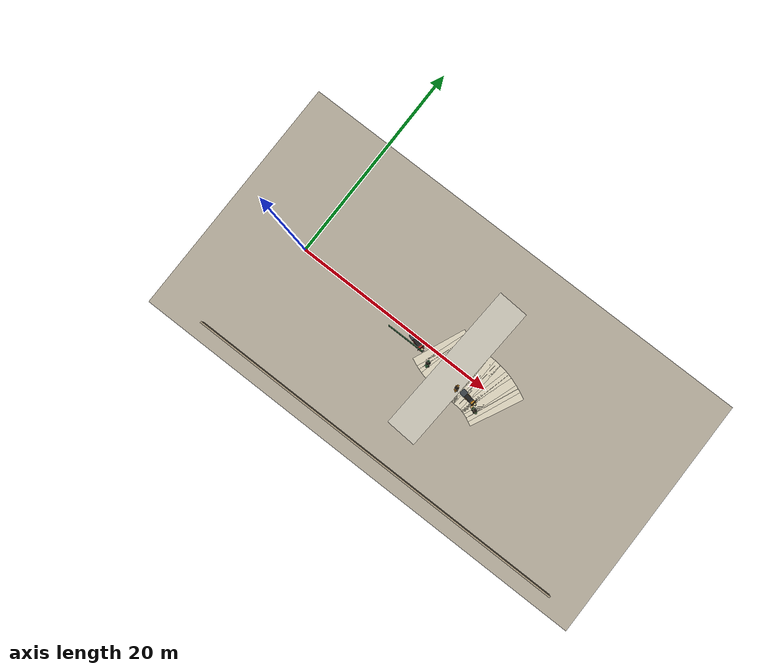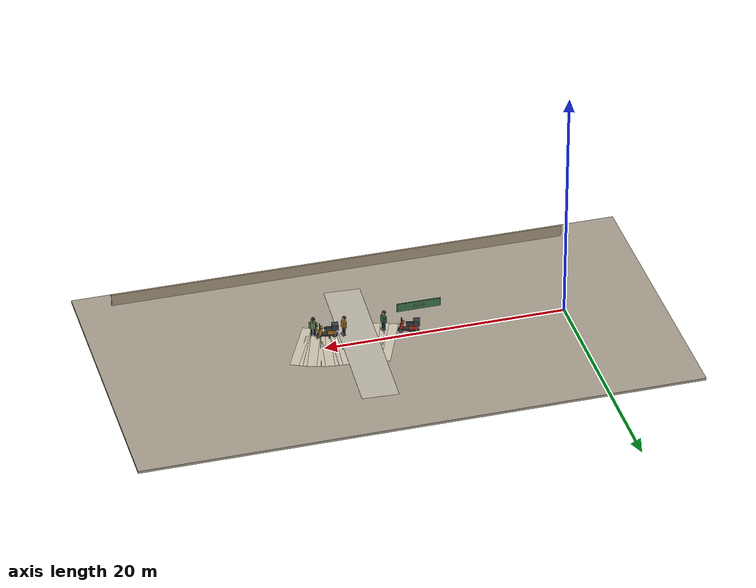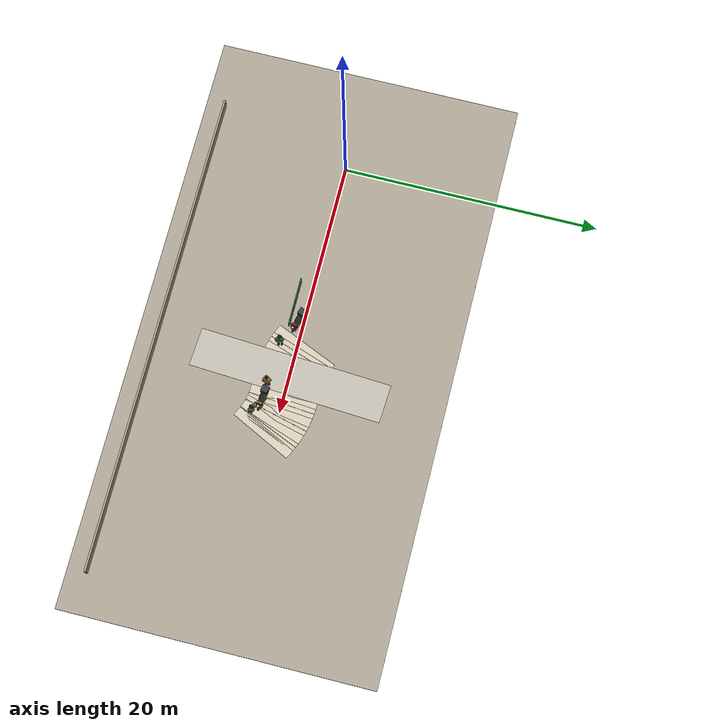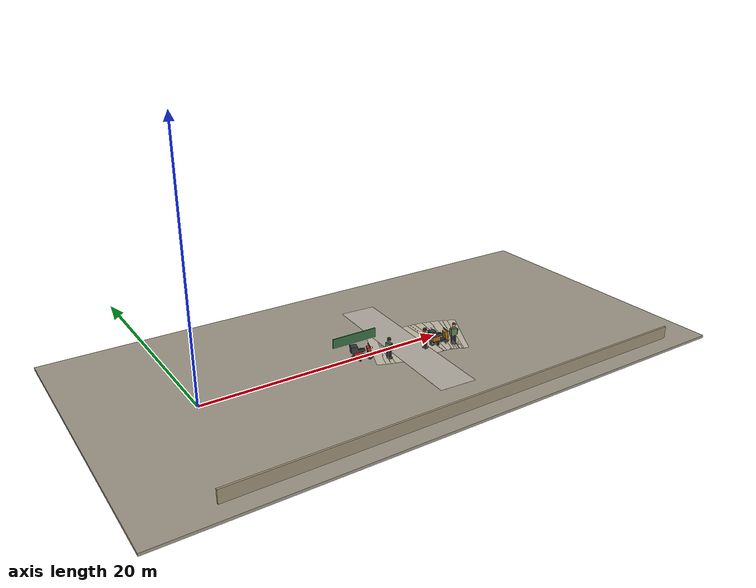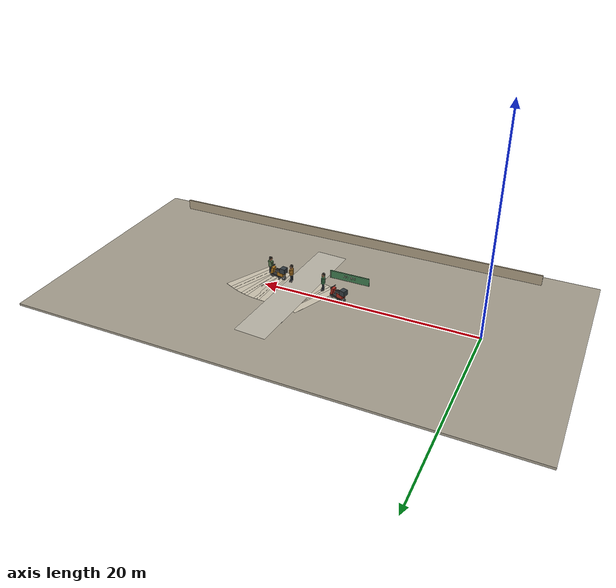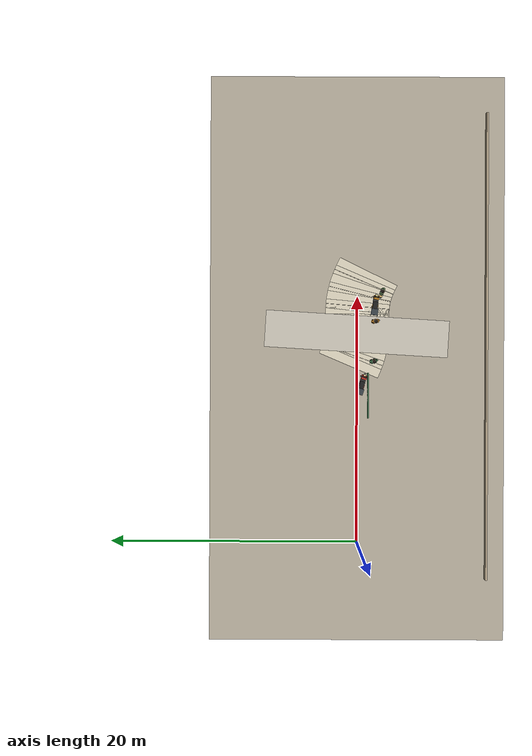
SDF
<sdf version="1.10">
 <world name="swan_market">
  <model name="ground">
   <static>true</static>
   <pose>15 0 -0.1 0 0 0</pose>
   <link name="body">
    <collision name="box_collision"><geometry><box><size>46 24 0.2</size></box></geometry></collision>
    <visual name="box_visual">
     <geometry><box><size>46 24 0.2</size></box></geometry>
     <material><ambient>0.64 0.61 0.55 1</ambient><diffuse>0.64 0.61 0.55 1</diffuse></material>
    </visual>
   </link>
  </model>
  <model name="market_paving_33">
   <static>true</static>
   <pose>14.75 0.54833 0.002 0 0 -0.40225</pose>
   <link name="body">
    <visual name="box_visual">
     <geometry><box><size>0.75 5.2 0.004</size></box></geometry>
     <material><ambient>0.79 0.76 0.68 1</ambient><diffuse>0.79 0.76 0.68 1</diffuse></material>
    </visual>
   </link>
  </model>
  <model name="market_paving_34">
   <static>true</static>
   <pose>15.25 0.35543 0.002 0 0 -0.33122</pose>
   <link name="body">
    <visual name="box_visual">
     <geometry><box><size>0.75 5.2 0.004</size></box></geometry>
     <material><ambient>0.79 0.76 0.68 1</ambient><diffuse>0.79 0.76 0.68 1</diffuse></material>
    </visual>
   </link>
  </model>
  <model name="paving_joint_34">
   <static>true</static>
   <pose>15.25 0.35543 0.0045 0 0 -0.33122</pose>
   <link name="body">
    <visual name="box_visual">
     <geometry><box><size>0.025 5.2 0.001</size></box></geometry>
     <material><ambient>0.67 0.64 0.57 1</ambient><diffuse>0.67 0.64 0.57 1</diffuse></material>
    </visual>
   </link>
  </model>
  <model name="market_paving_35">
   <static>true</static>
   <pose>15.75 0.20586 0.002 0 0 -0.2486</pose>
   <link name="body">
    <visual name="box_visual">
     <geometry><box><size>0.75 5.2 0.004</size></box></geometry>
     <material><ambient>0.79 0.76 0.68 1</ambient><diffuse>0.79 0.76 0.68 1</diffuse></material>
    </visual>
   </link>
  </model>
  <model name="market_paving_36">
   <static>true</static>
   <pose>16.25 0.10125 0.002 0 0 -0.16424</pose>
   <link name="body">
    <visual name="box_visual">
     <geometry><box><size>0.75 5.2 0.004</size></box></geometry>
     <material><ambient>0.79 0.76 0.68 1</ambient><diffuse>0.79 0.76 0.68 1</diffuse></material>
    </visual>
   </link>
  </model>
  <model name="paving_joint_36">
   <static>true</static>
   <pose>16.25 0.10125 0.0045 0 0 -0.16424</pose>
   <link name="body">
    <visual name="box_visual">
     <geometry><box><size>0.025 5.2 0.001</size></box></geometry>
     <material><ambient>0.67 0.64 0.57 1</ambient><diffuse>0.67 0.64 0.57 1</diffuse></material>
    </visual>
   </link>
  </model>
  <model name="market_paving_37">
   <static>true</static>
   <pose>16.75 0.038143 0.002 0 0 -0.089204</pose>
   <link name="body">
    <visual name="box_visual">
     <geometry><box><size>0.75 5.2 0.004</size></box></geometry>
     <material><ambient>0.79 0.76 0.68 1</ambient><diffuse>0.79 0.76 0.68 1</diffuse></material>
    </visual>
   </link>
  </model>
  <model name="market_paving_38">
   <static>true</static>
   <pose>17.25 0.0084221 0.002 0 0 -0.033398</pose>
   <link name="body">
    <visual name="box_visual">
     <geometry><box><size>0.75 5.2 0.004</size></box></geometry>
     <material><ambient>0.79 0.76 0.68 1</ambient><diffuse>0.79 0.76 0.68 1</diffuse></material>
    </visual>
   </link>
  </model>
  <model name="paving_joint_38">
   <static>true</static>
   <pose>17.25 0.0084221 0.0045 0 0 -0.033398</pose>
   <link name="body">
    <visual name="box_visual">
     <geometry><box><size>0.025 5.2 0.001</size></box></geometry>
     <material><ambient>0.67 0.64 0.57 1</ambient><diffuse>0.67 0.64 0.57 1</diffuse></material>
    </visual>
   </link>
  </model>
  <model name="market_paving_39">
   <static>true</static>
   <pose>17.75 0.00031537 0.002 0 0 -0.003781</pose>
   <link name="body">
    <visual name="box_visual">
     <geometry><box><size>0.75 5.2 0.004</size></box></geometry>
     <material><ambient>0.79 0.76 0.68 1</ambient><diffuse>0.79 0.76 0.68 1</diffuse></material>
    </visual>
   </link>
  </model>
  <model name="market_paving_40">
   <static>true</static>
   <pose>18.25 -0.00031537 0.002 0 0 -0.003781</pose>
   <link name="body">
    <visual name="box_visual">
     <geometry><box><size>0.75 5.2 0.004</size></box></geometry>
     <material><ambient>0.79 0.76 0.68 1</ambient><diffuse>0.79 0.76 0.68 1</diffuse></material>
    </visual>
   </link>
  </model>
  <model name="paving_joint_40">
   <static>true</static>
   <pose>18.25 -0.00031537 0.0045 0 0 -0.003781</pose>
   <link name="body">
    <visual name="box_visual">
     <geometry><box><size>0.025 5.2 0.001</size></box></geometry>
     <material><ambient>0.67 0.64 0.57 1</ambient><diffuse>0.67 0.64 0.57 1</diffuse></material>
    </visual>
   </link>
  </model>
  <model name="market_paving_41">
   <static>true</static>
   <pose>18.75 -0.0084221 0.002 0 0 -0.033398</pose>
   <link name="body">
    <visual name="box_visual">
     <geometry><box><size>0.75 5.2 0.004</size></box></geometry>
     <material><ambient>0.79 0.76 0.68 1</ambient><diffuse>0.79 0.76 0.68 1</diffuse></material>
    </visual>
   </link>
  </model>
  <model name="market_paving_42">
   <static>true</static>
   <pose>19.25 -0.038143 0.002 0 0 -0.089204</pose>
   <link name="body">
    <visual name="box_visual">
     <geometry><box><size>0.75 5.2 0.004</size></box></geometry>
     <material><ambient>0.79 0.76 0.68 1</ambient><diffuse>0.79 0.76 0.68 1</diffuse></material>
    </visual>
   </link>
  </model>
  <model name="paving_joint_42">
   <static>true</static>
   <pose>19.25 -0.038143 0.0045 0 0 -0.089204</pose>
   <link name="body">
    <visual name="box_visual">
     <geometry><box><size>0.025 5.2 0.001</size></box></geometry>
     <material><ambient>0.67 0.64 0.57 1</ambient><diffuse>0.67 0.64 0.57 1</diffuse></material>
    </visual>
   </link>
  </model>
  <model name="market_paving_43">
   <static>true</static>
   <pose>19.75 -0.10125 0.002 0 0 -0.16424</pose>
   <link name="body">
    <visual name="box_visual">
     <geometry><box><size>0.75 5.2 0.004</size></box></geometry>
     <material><ambient>0.79 0.76 0.68 1</ambient><diffuse>0.79 0.76 0.68 1</diffuse></material>
    </visual>
   </link>
  </model>
  <model name="market_paving_44">
   <static>true</static>
   <pose>20.25 -0.20586 0.002 0 0 -0.2486</pose>
   <link name="body">
    <visual name="box_visual">
     <geometry><box><size>0.75 5.2 0.004</size></box></geometry>
     <material><ambient>0.79 0.76 0.68 1</ambient><diffuse>0.79 0.76 0.68 1</diffuse></material>
    </visual>
   </link>
  </model>
  <model name="paving_joint_44">
   <static>true</static>
   <pose>20.25 -0.20586 0.0045 0 0 -0.2486</pose>
   <link name="body">
    <visual name="box_visual">
     <geometry><box><size>0.025 5.2 0.001</size></box></geometry>
     <material><ambient>0.67 0.64 0.57 1</ambient><diffuse>0.67 0.64 0.57 1</diffuse></material>
    </visual>
   </link>
  </model>
  <model name="market_paving_45">
   <static>true</static>
   <pose>20.75 -0.35543 0.002 0 0 -0.33122</pose>
   <link name="body">
    <visual name="box_visual">
     <geometry><box><size>0.75 5.2 0.004</size></box></geometry>
     <material><ambient>0.79 0.76 0.68 1</ambient><diffuse>0.79 0.76 0.68 1</diffuse></material>
    </visual>
   </link>
  </model>
  <model name="market_paving_46">
   <static>true</static>
   <pose>21.25 -0.54833 0.002 0 0 -0.40225</pose>
   <link name="body">
    <visual name="box_visual">
     <geometry><box><size>0.75 5.2 0.004</size></box></geometry>
     <material><ambient>0.79 0.76 0.68 1</ambient><diffuse>0.79 0.76 0.68 1</diffuse></material>
    </visual>
   </link>
  </model>
  <model name="paving_joint_46">
   <static>true</static>
   <pose>21.25 -0.54833 0.0045 0 0 -0.40225</pose>
   <link name="body">
    <visual name="box_visual">
     <geometry><box><size>0.025 5.2 0.001</size></box></geometry>
     <material><ambient>0.67 0.64 0.57 1</ambient><diffuse>0.67 0.64 0.57 1</diffuse></material>
    </visual>
   </link>
  </model>
  <model name="market_paving_47">
   <static>true</static>
   <pose>21.75 -0.77782 0.002 0 0 -0.45458</pose>
   <link name="body">
    <visual name="box_visual">
     <geometry><box><size>0.75 5.2 0.004</size></box></geometry>
     <material><ambient>0.79 0.76 0.68 1</ambient><diffuse>0.79 0.76 0.68 1</diffuse></material>
    </visual>
   </link>
  </model>
  <model name="cross_aisle">
   <static>true</static>
   <pose>17 0.019772 0.006 0 0 -0.058381</pose>
   <link name="body">
    <visual name="box_visual">
     <geometry><box><size>3 15 0.002</size></box></geometry>
     <material><ambient>0.72 0.7 0.65 1</ambient><diffuse>0.72 0.7 0.65 1</diffuse></material>
    </visual>
   </link>
  </model>
  <model name="boundary_-1">
   <static>true</static>
   <pose>16 -10.5 0.5 0 0 0</pose>
   <link name="body">
    <collision name="box_collision"><geometry><box><size>38 0.15 1</size></box></geometry></collision>
    <visual name="box_visual">
     <geometry><box><size>38 0.15 1</size></box></geometry>
     <material><ambient>0.65 0.59 0.49 1</ambient><diffuse>0.65 0.59 0.49 1</diffuse></material>
    </visual>
   </link>
  </model>
  <model name="signboard_5">
   <static>true</static>
   <pose>12 -0.79747 2.24 0 0 0</pose>
   <link name="body">
    <collision name="box_collision"><geometry><box><size>3.65 0.08 0.72</size></box></geometry></collision>
    <visual name="box_visual">
     <geometry><box><size>3.65 0.08 0.72</size></box></geometry>
     <material><ambient>0.23 0.46 0.29 1</ambient><diffuse>0.23 0.46 0.29 1</diffuse></material>
    </visual>
   </link>
  </model>
  <model name="sign_shop_5">
   <static>true</static>
   <pose>12 -0.74947 2.24 0 0 3.1416</pose>
   <link name="body">
    <visual name="top_visual">
     <pose>0 -0.003 0.32062 0 0 0</pose>
     <geometry><box><size>3.5136 0.003 0.0108</size></box></geometry>
     <material><ambient>1 0.961 0.875 1</ambient><diffuse>1 0.961 0.875 1</diffuse></material>
    </visual>
    <visual name="bottom_visual">
     <pose>0 -0.003 -0.32062 0 0 0</pose>
     <geometry><box><size>3.5136 0.003 0.0108</size></box></geometry>
     <material><ambient>1 0.961 0.875 1</ambient><diffuse>1 0.961 0.875 1</diffuse></material>
    </visual>
    <visual name="left_visual">
     <pose>-1.7568 -0.003 0 0 0 0</pose>
     <geometry><box><size>0.0108 0.003 0.64125</size></box></geometry>
     <material><ambient>1 0.961 0.875 1</ambient><diffuse>1 0.961 0.875 1</diffuse></material>
    </visual>
    <visual name="right_visual">
     <pose>1.7568 -0.003 0 0 0 0</pose>
     <geometry><box><size>0.0108 0.003 0.64125</size></box></geometry>
     <material><ambient>1 0.961 0.875 1</ambient><diffuse>1 0.961 0.875 1</diffuse></material>
    </visual>
    <visual name="ink_0_visual">
     <pose>-0.47813 -0.003 0.14062 0 0 0</pose>
     <geometry><box><size>0.01875 0.003 0.01875</size></box></geometry>
     <material><ambient>1 0.961 0.875 1</ambient><diffuse>1 0.961 0.875 1</diffuse></material>
    </visual>
    <visual name="ink_1_visual">
     <pose>-0.225 -0.003 0.14062 0 0 0</pose>
     <geometry><box><size>0.15 0.003 0.01875</size></box></geometry>
     <material><ambient>1 0.961 0.875 1</ambient><diffuse>1 0.961 0.875 1</diffuse></material>
    </visual>
    <visual name="ink_2_visual">
     <pose>0.09375 -0.003 0.14062 0 0 0</pose>
     <geometry><box><size>0.0375 0.003 0.01875</size></box></geometry>
     <material><ambient>1 0.961 0.875 1</ambient><diffuse>1 0.961 0.875 1</diffuse></material>
    </visual>
    <visual name="ink_3_visual">
     <pose>0.25312 -0.003 0.15 0 0 0</pose>
     <geometry><box><size>0.01875 0.003 0.0375</size></box></geometry>
     <material><ambient>1 0.961 0.875 1</ambient><diffuse>1 0.961 0.875 1</diffuse></material>
    </visual>
    <visual name="ink_4_visual">
     <pose>0.16875 -0.003 0.12188 0 0 0</pose>
     <geometry><box><size>0.1875 0.003 0.01875</size></box></geometry>
     <material><ambient>1 0.961 0.875 1</ambient><diffuse>1 0.961 0.875 1</diffuse></material>
    </visual>
    <visual name="ink_5_visual">
     <pose>-0.10312 -0.003 0.13125 0 0 0</pose>
     <geometry><box><size>0.01875 0.003 0.075</size></box></geometry>
     <material><ambient>1 0.961 0.875 1</ambient><diffuse>1 0.961 0.875 1</diffuse></material>
    </visual>
    <visual name="ink_6_visual">
     <pose>0.14062 -0.003 0.10313 0 0 0</pose>
     <geometry><box><size>0.01875 0.003 0.01875</size></box></geometry>
     <material><ambient>1 0.961 0.875 1</ambient><diffuse>1 0.961 0.875 1</diffuse></material>
    </visual>
    <visual name="ink_7_visual">
     <pose>0.24375 -0.003 0.10313 0 0 0</pose>
     <geometry><box><size>0.0375 0.003 0.01875</size></box></geometry>
     <material><ambient>1 0.961 0.875 1</ambient><diffuse>1 0.961 0.875 1</diffuse></material>
    </visual>
    <visual name="ink_8_visual">
     <pose>0.39375 -0.003 0.12188 0 0 0</pose>
     <geometry><box><size>0.0375 0.003 0.05625</size></box></geometry>
     <material><ambient>1 0.961 0.875 1</ambient><diffuse>1 0.961 0.875 1</diffuse></material>
    </visual>
    <visual name="ink_9_visual">
     <pose>-0.225 -0.003 0.10313 0 0 0</pose>
     <geometry><box><size>0.0375 0.003 0.05625</size></box></geometry>
     <material><ambient>1 0.961 0.875 1</ambient><diffuse>1 0.961 0.875 1</diffuse></material>
    </visual>
    <visual name="ink_10_visual">
     <pose>-0.075 -0.003 0.084375 0 0 0</pose>
     <geometry><box><size>0.075 0.003 0.01875</size></box></geometry>
     <material><ambient>1 0.961 0.875 1</ambient><diffuse>1 0.961 0.875 1</diffuse></material>
    </visual>
    <visual name="ink_11_visual">
     <pose>0.09375 -0.003 0.09375 0 0 0</pose>
     <geometry><box><size>0.0375 0.003 0.0375</size></box></geometry>
     <material><ambient>1 0.961 0.875 1</ambient><diffuse>1 0.961 0.875 1</diffuse></material>
    </visual>
    <visual name="ink_12_visual">
     <pose>0.25312 -0.003 0.084375 0 0 0</pose>
     <geometry><box><size>0.01875 0.003 0.01875</size></box></geometry>
     <material><ambient>1 0.961 0.875 1</ambient><diffuse>1 0.961 0.875 1</diffuse></material>
    </visual>
    <visual name="ink_13_visual">
     <pose>0.40312 -0.003 0.084375 0 0 0</pose>
     <geometry><box><size>0.05625 0.003 0.01875</size></box></geometry>
     <material><ambient>1 0.961 0.875 1</ambient><diffuse>1 0.961 0.875 1</diffuse></material>
    </visual>
    <visual name="ink_14_visual">
     <pose>-0.4875 -0.003 0.09375 0 0 0</pose>
     <geometry><box><size>0.0375 0.003 0.075</size></box></geometry>
     <material><ambient>1 0.961 0.875 1</ambient><diffuse>1 0.961 0.875 1</diffuse></material>
    </visual>
    <visual name="ink_15_visual">
     <pose>-0.225 -0.003 0.065625 0 0 0</pose>
     <geometry><box><size>0.075 0.003 0.01875</size></box></geometry>
     <material><ambient>1 0.961 0.875 1</ambient><diffuse>1 0.961 0.875 1</diffuse></material>
    </visual>
    <visual name="ink_16_visual">
     <pose>0.16875 -0.003 0.065625 0 0 0</pose>
     <geometry><box><size>0.1875 0.003 0.01875</size></box></geometry>
     <material><ambient>1 0.961 0.875 1</ambient><diffuse>1 0.961 0.875 1</diffuse></material>
    </visual>
    <visual name="ink_17_visual">
     <pose>0.375 -0.003 0.065625 0 0 0</pose>
     <geometry><box><size>0.0375 0.003 0.01875</size></box></geometry>
     <material><ambient>1 0.961 0.875 1</ambient><diffuse>1 0.961 0.875 1</diffuse></material>
    </visual>
    <visual name="ink_18_visual">
     <pose>0.43125 -0.003 0.065625 0 0 0</pose>
     <geometry><box><size>0.0375 0.003 0.01875</size></box></geometry>
     <material><ambient>1 0.961 0.875 1</ambient><diffuse>1 0.961 0.875 1</diffuse></material>
    </visual>
    <visual name="ink_19_visual">
     <pose>-0.47813 -0.003 0.046875 0 0 0</pose>
     <geometry><box><size>0.05625 0.003 0.01875</size></box></geometry>
     <material><ambient>1 0.961 0.875 1</ambient><diffuse>1 0.961 0.875 1</diffuse></material>
    </visual>
    <visual name="ink_20_visual">
     <pose>-0.2625 -0.003 0.046875 0 0 0</pose>
     <geometry><box><size>0.0375 0.003 0.01875</size></box></geometry>
     <material><ambient>1 0.961 0.875 1</ambient><diffuse>1 0.961 0.875 1</diffuse></material>
    </visual>
    <visual name="ink_21_visual">
     <pose>-0.17813 -0.003 0.046875 0 0 0</pose>
     <geometry><box><size>0.05625 0.003 0.01875</size></box></geometry>
     <material><ambient>1 0.961 0.875 1</ambient><diffuse>1 0.961 0.875 1</diffuse></material>
    </visual>
    <visual name="ink_22_visual">
     <pose>0.35625 -0.003 0.046875 0 0 0</pose>
     <geometry><box><size>0.0375 0.003 0.01875</size></box></geometry>
     <material><ambient>1 0.961 0.875 1</ambient><diffuse>1 0.961 0.875 1</diffuse></material>
    </visual>
    <visual name="ink_23_visual">
     <pose>0.45 -0.003 0.046875 0 0 0</pose>
     <geometry><box><size>0.0375 0.003 0.01875</size></box></geometry>
     <material><ambient>1 0.961 0.875 1</ambient><diffuse>1 0.961 0.875 1</diffuse></material>
    </visual>
    <visual name="ink_24_visual">
     <pose>-0.45938 -0.003 0.028125 0 0 0</pose>
     <geometry><box><size>0.01875 0.003 0.01875</size></box></geometry>
     <material><ambient>1 0.961 0.875 1</ambient><diffuse>1 0.961 0.875 1</diffuse></material>
    </visual>
    <visual name="ink_25_visual">
     <pose>-0.28125 -0.003 0.028125 0 0 0</pose>
     <geometry><box><size>0.0375 0.003 0.01875</size></box></geometry>
     <material><ambient>1 0.961 0.875 1</ambient><diffuse>1 0.961 0.875 1</diffuse></material>
    </visual>
    <visual name="ink_26_visual">
     <pose>-0.15937 -0.003 0.028125 0 0 0</pose>
     <geometry><box><size>0.01875 0.003 0.01875</size></box></geometry>
     <material><ambient>1 0.961 0.875 1</ambient><diffuse>1 0.961 0.875 1</diffuse></material>
    </visual>
    <visual name="ink_27_visual">
     <pose>0.10313 -0.003 0.028125 0 0 0</pose>
     <geometry><box><size>0.09375 0.003 0.01875</size></box></geometry>
     <material><ambient>1 0.961 0.875 1</ambient><diffuse>1 0.961 0.875 1</diffuse></material>
    </visual>
    <visual name="ink_28_visual">
     <pose>0.23437 -0.003 0.028125 0 0 0</pose>
     <geometry><box><size>0.09375 0.003 0.01875</size></box></geometry>
     <material><ambient>1 0.961 0.875 1</ambient><diffuse>1 0.961 0.875 1</diffuse></material>
    </visual>
    <visual name="ink_29_visual">
     <pose>0.3375 -0.003 0.028125 0 0 0</pose>
     <geometry><box><size>0.0375 0.003 0.01875</size></box></geometry>
     <material><ambient>1 0.961 0.875 1</ambient><diffuse>1 0.961 0.875 1</diffuse></material>
    </visual>
    <visual name="ink_30_visual">
     <pose>0.45937 -0.003 0.028125 0 0 0</pose>
     <geometry><box><size>0.01875 0.003 0.01875</size></box></geometry>
     <material><ambient>1 0.961 0.875 1</ambient><diffuse>1 0.961 0.875 1</diffuse></material>
    </visual>
    <visual name="ink_31_visual">
     <pose>0.525 -0.003 0.09375 0 0 0</pose>
     <geometry><box><size>0.0375 0.003 0.15</size></box></geometry>
     <material><ambient>1 0.961 0.875 1</ambient><diffuse>1 0.961 0.875 1</diffuse></material>
    </visual>
    <visual name="ink_32_visual">
     <pose>-0.50625 -0.003 0.01875 0 0 0</pose>
     <geometry><box><size>0.0375 0.003 0.0375</size></box></geometry>
     <material><ambient>1 0.961 0.875 1</ambient><diffuse>1 0.961 0.875 1</diffuse></material>
    </visual>
    <visual name="ink_33_visual">
     <pose>-0.45 -0.003 0.009375 0 0 0</pose>
     <geometry><box><size>0.0375 0.003 0.01875</size></box></geometry>
     <material><ambient>1 0.961 0.875 1</ambient><diffuse>1 0.961 0.875 1</diffuse></material>
    </visual>
    <visual name="ink_34_visual">
     <pose>-0.10312 -0.003 0.0375 0 0 0</pose>
     <geometry><box><size>0.01875 0.003 0.075</size></box></geometry>
     <material><ambient>1 0.961 0.875 1</ambient><diffuse>1 0.961 0.875 1</diffuse></material>
    </visual>
    <visual name="ink_35_visual">
     <pose>0.17812 -0.003 0.009375 0 0 0</pose>
     <geometry><box><size>0.24375 0.003 0.01875</size></box></geometry>
     <material><ambient>1 0.961 0.875 1</ambient><diffuse>1 0.961 0.875 1</diffuse></material>
    </visual>
    <visual name="ink_36_visual">
     <pose>0.53438 -0.003 0.009375 0 0 0</pose>
     <geometry><box><size>0.01875 0.003 0.01875</size></box></geometry>
     <material><ambient>1 0.961 0.875 1</ambient><diffuse>1 0.961 0.875 1</diffuse></material>
    </visual>
    <visual name="ink_37_visual">
     <pose>-0.525 -0.003 -0.009375 0 0 0</pose>
     <geometry><box><size>0.0375 0.003 0.01875</size></box></geometry>
     <material><ambient>1 0.961 0.875 1</ambient><diffuse>1 0.961 0.875 1</diffuse></material>
    </visual>
    <visual name="ink_38_visual">
     <pose>-0.43125 -0.003 -0.009375 0 0 0</pose>
     <geometry><box><size>0.0375 0.003 0.01875</size></box></geometry>
     <material><ambient>1 0.961 0.875 1</ambient><diffuse>1 0.961 0.875 1</diffuse></material>
    </visual>
    <visual name="ink_39_visual">
     <pose>-0.17813 -0.003 -0.009375 0 0 0</pose>
     <geometry><box><size>0.13125 0.003 0.01875</size></box></geometry>
     <material><ambient>1 0.961 0.875 1</ambient><diffuse>1 0.961 0.875 1</diffuse></material>
    </visual>
    <visual name="ink_40_visual">
     <pose>0.44063 -0.003 -0.009375 0 0 0</pose>
     <geometry><box><size>0.16875 0.003 0.01875</size></box></geometry>
     <material><ambient>1 0.961 0.875 1</ambient><diffuse>1 0.961 0.875 1</diffuse></material>
    </visual>
    <visual name="ink_41_visual">
     <pose>-0.54375 -0.003 -0.028125 0 0 0</pose>
     <geometry><box><size>0.0375 0.003 0.01875</size></box></geometry>
     <material><ambient>1 0.961 0.875 1</ambient><diffuse>1 0.961 0.875 1</diffuse></material>
    </visual>
    <visual name="ink_42_visual">
     <pose>-0.42188 -0.003 -0.028125 0 0 0</pose>
     <geometry><box><size>0.01875 0.003 0.01875</size></box></geometry>
     <material><ambient>1 0.961 0.875 1</ambient><diffuse>1 0.961 0.875 1</diffuse></material>
    </visual>
    <visual name="ink_43_visual">
     <pose>-0.24375 -0.003 -0.028125 0 0 0</pose>
     <geometry><box><size>0.0375 0.003 0.01875</size></box></geometry>
     <material><ambient>1 0.961 0.875 1</ambient><diffuse>1 0.961 0.875 1</diffuse></material>
    </visual>
    <visual name="ink_44_visual">
     <pose>-0.1125 -0.003 -0.028125 0 0 0</pose>
     <geometry><box><size>0.0375 0.003 0.01875</size></box></geometry>
     <material><ambient>1 0.961 0.875 1</ambient><diffuse>1 0.961 0.875 1</diffuse></material>
    </visual>
    <visual name="ink_45_visual">
     <pose>0.16875 -0.003 -0.01875 0 0 0</pose>
     <geometry><box><size>0.0375 0.003 0.0375</size></box></geometry>
     <material><ambient>1 0.961 0.875 1</ambient><diffuse>1 0.961 0.875 1</diffuse></material>
    </visual>
    <visual name="ink_46_visual">
     <pose>0.45 -0.003 -0.028125 0 0 0</pose>
     <geometry><box><size>0.1875 0.003 0.01875</size></box></geometry>
     <material><ambient>1 0.961 0.875 1</ambient><diffuse>1 0.961 0.875 1</diffuse></material>
    </visual>
    <visual name="ink_47_visual">
     <pose>-0.25312 -0.003 -0.046875 0 0 0</pose>
     <geometry><box><size>0.01875 0.003 0.01875</size></box></geometry>
     <material><ambient>1 0.961 0.875 1</ambient><diffuse>1 0.961 0.875 1</diffuse></material>
    </visual>
    <visual name="ink_48_visual">
     <pose>-0.09375 -0.003 -0.046875 0 0 0</pose>
     <geometry><box><size>0.0375 0.003 0.01875</size></box></geometry>
     <material><ambient>1 0.961 0.875 1</ambient><diffuse>1 0.961 0.875 1</diffuse></material>
    </visual>
    <visual name="ink_49_visual">
     <pose>-0.24375 -0.003 -0.065625 0 0 0</pose>
     <geometry><box><size>0.0375 0.003 0.01875</size></box></geometry>
     <material><ambient>1 0.961 0.875 1</ambient><diffuse>1 0.961 0.875 1</diffuse></material>
    </visual>
    <visual name="ink_50_visual">
     <pose>-0.10312 -0.003 -0.065625 0 0 0</pose>
     <geometry><box><size>0.01875 0.003 0.01875</size></box></geometry>
     <material><ambient>1 0.961 0.875 1</ambient><diffuse>1 0.961 0.875 1</diffuse></material>
    </visual>
    <visual name="ink_51_visual">
     <pose>0.09375 -0.003 -0.046875 0 0 0</pose>
     <geometry><box><size>0.0375 0.003 0.05625</size></box></geometry>
     <material><ambient>1 0.961 0.875 1</ambient><diffuse>1 0.961 0.875 1</diffuse></material>
    </visual>
    <visual name="ink_52_visual">
     <pose>-0.35625 -0.003 0.0375 0 0 0</pose>
     <geometry><box><size>0.0375 0.003 0.2625</size></box></geometry>
     <material><ambient>1 0.961 0.875 1</ambient><diffuse>1 0.961 0.875 1</diffuse></material>
    </visual>
    <visual name="ink_53_visual">
     <pose>-0.16875 -0.003 -0.084375 0 0 0</pose>
     <geometry><box><size>0.15 0.003 0.01875</size></box></geometry>
     <material><ambient>1 0.961 0.875 1</ambient><diffuse>1 0.961 0.875 1</diffuse></material>
    </visual>
    <visual name="ink_54_visual">
     <pose>0.16875 -0.003 -0.084375 0 0 0</pose>
     <geometry><box><size>0.1875 0.003 0.01875</size></box></geometry>
     <material><ambient>1 0.961 0.875 1</ambient><diffuse>1 0.961 0.875 1</diffuse></material>
    </visual>
    <visual name="ink_55_visual">
     <pose>0.525 -0.003 -0.065625 0 0 0</pose>
     <geometry><box><size>0.0375 0.003 0.05625</size></box></geometry>
     <material><ambient>1 0.961 0.875 1</ambient><diffuse>1 0.961 0.875 1</diffuse></material>
    </visual>
    <visual name="ink_56_visual">
     <pose>-0.34688 -0.003 -0.10313 0 0 0</pose>
     <geometry><box><size>0.01875 0.003 0.01875</size></box></geometry>
     <material><ambient>1 0.961 0.875 1</ambient><diffuse>1 0.961 0.875 1</diffuse></material>
    </visual>
    <visual name="ink_57_visual">
     <pose>-0.17813 -0.003 -0.10313 0 0 0</pose>
     <geometry><box><size>0.05625 0.003 0.01875</size></box></geometry>
     <material><ambient>1 0.961 0.875 1</ambient><diffuse>1 0.961 0.875 1</diffuse></material>
    </visual>
   </link>
  </model>
  <model name="shopper_grocery">
   <static>true</static>
   <pose>20.405 -1.9859 0 0 0 -1.9395</pose>
   <link name="body">
    <collision name="leg_-1_collision">
     <pose>0 -0.12 0.4 0 0 0</pose>
     <geometry><cylinder><radius>0.085</radius><length>0.68</length></cylinder></geometry>
    </collision>
    <visual name="leg_-1_visual">
     <pose>0 -0.12 0.4 0 0 0</pose>
     <geometry><cylinder><radius>0.085</radius><length>0.68</length></cylinder></geometry>
     <material><ambient>0.12 0.15 0.18 1</ambient><diffuse>0.12 0.15 0.18 1</diffuse></material>
    </visual>
    <collision name="shoe_-1_collision">
     <pose>0.06 -0.12 0.055 0 0 0</pose>
     <geometry><box><size>0.28 0.17 0.11</size></box></geometry>
    </collision>
    <visual name="shoe_-1_visual">
     <pose>0.06 -0.12 0.055 0 0 0</pose>
     <geometry><box><size>0.28 0.17 0.11</size></box></geometry>
     <material><ambient>0.08 0.07 0.06 1</ambient><diffuse>0.08 0.07 0.06 1</diffuse></material>
    </visual>
    <collision name="arm_-1_collision">
     <pose>0.02 -0.27 1.02 0 -0.12 0</pose>
     <geometry><cylinder><radius>0.068</radius><length>0.48</length></cylinder></geometry>
    </collision>
    <visual name="arm_-1_visual">
     <pose>0.02 -0.27 1.02 0 -0.12 0</pose>
     <geometry><cylinder><radius>0.068</radius><length>0.48</length></cylinder></geometry>
     <material><ambient>0.36 0.48 0.31 1</ambient><diffuse>0.36 0.48 0.31 1</diffuse></material>
    </visual>
    <collision name="leg_1_collision">
     <pose>0 0.12 0.4 0 0 0</pose>
     <geometry><cylinder><radius>0.085</radius><length>0.68</length></cylinder></geometry>
    </collision>
    <visual name="leg_1_visual">
     <pose>0 0.12 0.4 0 0 0</pose>
     <geometry><cylinder><radius>0.085</radius><length>0.68</length></cylinder></geometry>
     <material><ambient>0.12 0.15 0.18 1</ambient><diffuse>0.12 0.15 0.18 1</diffuse></material>
    </visual>
    <collision name="shoe_1_collision">
     <pose>0.06 0.12 0.055 0 0 0</pose>
     <geometry><box><size>0.28 0.17 0.11</size></box></geometry>
    </collision>
    <visual name="shoe_1_visual">
     <pose>0.06 0.12 0.055 0 0 0</pose>
     <geometry><box><size>0.28 0.17 0.11</size></box></geometry>
     <material><ambient>0.08 0.07 0.06 1</ambient><diffuse>0.08 0.07 0.06 1</diffuse></material>
    </visual>
    <collision name="arm_1_collision">
     <pose>0.02 0.27 1.02 0 0.12 0</pose>
     <geometry><cylinder><radius>0.068</radius><length>0.48</length></cylinder></geometry>
    </collision>
    <visual name="arm_1_visual">
     <pose>0.02 0.27 1.02 0 0.12 0</pose>
     <geometry><cylinder><radius>0.068</radius><length>0.48</length></cylinder></geometry>
     <material><ambient>0.36 0.48 0.31 1</ambient><diffuse>0.36 0.48 0.31 1</diffuse></material>
    </visual>
    <collision name="torso_collision">
     <pose>0 0 1.02 0 0 0</pose>
     <geometry><box><size>0.3 0.43 0.58</size></box></geometry>
    </collision>
    <visual name="torso_visual">
     <pose>0 0 1.02 0 0 0</pose>
     <geometry><box><size>0.3 0.43 0.58</size></box></geometry>
     <material><ambient>0.36 0.48 0.31 1</ambient><diffuse>0.36 0.48 0.31 1</diffuse></material>
    </visual>
    <visual name="neck_visual">
     <pose>0 0 1.37 0 0 0</pose>
     <geometry><cylinder><radius>0.07</radius><length>0.13</length></cylinder></geometry>
     <material><ambient>0.77 0.56 0.4 1</ambient><diffuse>0.77 0.56 0.4 1</diffuse></material>
    </visual>
    <collision name="head_collision">
     <pose>0 0 1.57 0 0 0</pose>
     <geometry><sphere><radius>0.16</radius></sphere></geometry>
    </collision>
    <visual name="head_visual">
     <pose>0 0 1.57 0 0 0</pose>
     <geometry><sphere><radius>0.16</radius></sphere></geometry>
     <material><ambient>0.77 0.56 0.4 1</ambient><diffuse>0.77 0.56 0.4 1</diffuse></material>
    </visual>
    <visual name="hair_visual">
     <pose>-0.025 0 1.63 0 0 0</pose>
     <geometry><sphere><radius>0.155</radius></sphere></geometry>
     <material><ambient>0.1 0.08 0.06 1</ambient><diffuse>0.1 0.08 0.06 1</diffuse></material>
    </visual>
    <collision name="shopping_bag_collision">
     <pose>0.04 -0.38 0.6 0 0 0</pose>
     <geometry><box><size>0.24 0.17 0.33</size></box></geometry>
    </collision>
    <visual name="shopping_bag_visual">
     <pose>0.04 -0.38 0.6 0 0 0</pose>
     <geometry><box><size>0.24 0.17 0.33</size></box></geometry>
     <material><ambient>0.78 0.65 0.39 1</ambient><diffuse>0.78 0.65 0.39 1</diffuse></material>
    </visual>
   </link>
  </model>
  <model name="motorcycle_delivery">
   <static>true</static>
   <pose>12.93 -0.40058 0 0 0 -0.30528</pose>
   <link name="body">
    <collision name="tire_0_collision">
     <pose>-0.61 0 0.25 1.5708 0 0</pose>
     <geometry><cylinder><radius>0.25</radius><length>0.14</length></cylinder></geometry>
    </collision>
    <visual name="tire_0_visual">
     <pose>-0.61 0 0.25 1.5708 0 0</pose>
     <geometry><cylinder><radius>0.25</radius><length>0.14</length></cylinder></geometry>
     <material><ambient>0.075 0.075 0.07 1</ambient><diffuse>0.075 0.075 0.07 1</diffuse></material>
    </visual>
    <visual name="hub_0_visual">
     <pose>-0.61 0 0.25 1.5708 0 0</pose>
     <geometry><cylinder><radius>0.13</radius><length>0.145</length></cylinder></geometry>
     <material><ambient>0.57 0.59 0.6 1</ambient><diffuse>0.57 0.59 0.6 1</diffuse></material>
    </visual>
    <collision name="tire_1_collision">
     <pose>0.62 0 0.25 1.5708 0 0</pose>
     <geometry><cylinder><radius>0.25</radius><length>0.14</length></cylinder></geometry>
    </collision>
    <visual name="tire_1_visual">
     <pose>0.62 0 0.25 1.5708 0 0</pose>
     <geometry><cylinder><radius>0.25</radius><length>0.14</length></cylinder></geometry>
     <material><ambient>0.075 0.075 0.07 1</ambient><diffuse>0.075 0.075 0.07 1</diffuse></material>
    </visual>
    <visual name="hub_1_visual">
     <pose>0.62 0 0.25 1.5708 0 0</pose>
     <geometry><cylinder><radius>0.13</radius><length>0.145</length></cylinder></geometry>
     <material><ambient>0.57 0.59 0.6 1</ambient><diffuse>0.57 0.59 0.6 1</diffuse></material>
    </visual>
    <collision name="deck_collision">
     <pose>0 0 0.33 0 0 0</pose>
     <geometry><box><size>1.2 0.43 0.17</size></box></geometry>
    </collision>
    <visual name="deck_visual">
     <pose>0 0 0.33 0 0 0</pose>
     <geometry><box><size>1.2 0.43 0.17</size></box></geometry>
     <material><ambient>0.18 0.18 0.18 1</ambient><diffuse>0.18 0.18 0.18 1</diffuse></material>
    </visual>
    <collision name="rear_body_collision">
     <pose>-0.36 0 0.59 0 0 0</pose>
     <geometry><box><size>0.65 0.46 0.4</size></box></geometry>
    </collision>
    <visual name="rear_body_visual">
     <pose>-0.36 0 0.59 0 0 0</pose>
     <geometry><box><size>0.65 0.46 0.4</size></box></geometry>
     <material><ambient>0.65 0.17 0.12 1</ambient><diffuse>0.65 0.17 0.12 1</diffuse></material>
    </visual>
    <collision name="seat_collision">
     <pose>-0.2 0 0.83 0 0 0</pose>
     <geometry><box><size>0.8 0.4 0.12</size></box></geometry>
    </collision>
    <visual name="seat_visual">
     <pose>-0.2 0 0.83 0 0 0</pose>
     <geometry><box><size>0.8 0.4 0.12</size></box></geometry>
     <material><ambient>0.1 0.1 0.1 1</ambient><diffuse>0.1 0.1 0.1 1</diffuse></material>
    </visual>
    <collision name="front_fairing_collision">
     <pose>0.53 0 0.69 0 -0.2 0</pose>
     <geometry><box><size>0.23 0.43 0.69</size></box></geometry>
    </collision>
    <visual name="front_fairing_visual">
     <pose>0.53 0 0.69 0 -0.2 0</pose>
     <geometry><box><size>0.23 0.43 0.69</size></box></geometry>
     <material><ambient>0.65 0.17 0.12 1</ambient><diffuse>0.65 0.17 0.12 1</diffuse></material>
    </visual>
    <collision name="handlebar_collision">
     <pose>0.56 0 1.12 1.5708 0 0</pose>
     <geometry><cylinder><radius>0.035</radius><length>0.72</length></cylinder></geometry>
    </collision>
    <visual name="handlebar_visual">
     <pose>0.56 0 1.12 1.5708 0 0</pose>
     <geometry><cylinder><radius>0.035</radius><length>0.72</length></cylinder></geometry>
     <material><ambient>0.18 0.18 0.18 1</ambient><diffuse>0.18 0.18 0.18 1</diffuse></material>
    </visual>
    <visual name="headlight_visual">
     <pose>0.7 0 0.94 0 0 0</pose>
     <geometry><sphere><radius>0.095</radius></sphere></geometry>
     <material><ambient>0.96 0.92 0.66 1</ambient><diffuse>0.96 0.92 0.66 1</diffuse></material>
    </visual>
    <collision name="delivery_box_collision">
     <pose>-0.65 0 1.01 0 0 0</pose>
     <geometry><box><size>0.51 0.55 0.48</size></box></geometry>
    </collision>
    <visual name="delivery_box_visual">
     <pose>-0.65 0 1.01 0 0 0</pose>
     <geometry><box><size>0.51 0.55 0.48</size></box></geometry>
     <material><ambient>0.2 0.23 0.25 1</ambient><diffuse>0.2 0.23 0.25 1</diffuse></material>
    </visual>
    <collision name="stand_collision">
     <pose>-0.2 0 0.1 0 0 0</pose>
     <geometry><box><size>0.12 0.5 0.2</size></box></geometry>
    </collision>
    <visual name="stand_visual">
     <pose>-0.2 0 0.1 0 0 0</pose>
     <geometry><box><size>0.12 0.5 0.2</size></box></geometry>
     <material><ambient>0.12 0.12 0.12 1</ambient><diffuse>0.12 0.12 0.12 1</diffuse></material>
    </visual>
   </link>
  </model>
  <model name="crowd_05">
   <static>true</static>
   <pose>14.744 -1.3209 0 0 0 0.27667</pose>
   <link name="body">
    <collision name="leg_-1_collision">
     <pose>0 -0.12 0.4 0 0 0</pose>
     <geometry><cylinder><radius>0.085</radius><length>0.68</length></cylinder></geometry>
    </collision>
    <visual name="leg_-1_visual">
     <pose>0 -0.12 0.4 0 0 0</pose>
     <geometry><cylinder><radius>0.085</radius><length>0.68</length></cylinder></geometry>
     <material><ambient>0.12 0.15 0.18 1</ambient><diffuse>0.12 0.15 0.18 1</diffuse></material>
    </visual>
    <collision name="shoe_-1_collision">
     <pose>0.06 -0.12 0.055 0 0 0</pose>
     <geometry><box><size>0.28 0.17 0.11</size></box></geometry>
    </collision>
    <visual name="shoe_-1_visual">
     <pose>0.06 -0.12 0.055 0 0 0</pose>
     <geometry><box><size>0.28 0.17 0.11</size></box></geometry>
     <material><ambient>0.08 0.07 0.06 1</ambient><diffuse>0.08 0.07 0.06 1</diffuse></material>
    </visual>
    <collision name="arm_-1_collision">
     <pose>0.02 -0.27 1.02 0 -0.12 0</pose>
     <geometry><cylinder><radius>0.068</radius><length>0.48</length></cylinder></geometry>
    </collision>
    <visual name="arm_-1_visual">
     <pose>0.02 -0.27 1.02 0 -0.12 0</pose>
     <geometry><cylinder><radius>0.068</radius><length>0.48</length></cylinder></geometry>
     <material><ambient>0.23 0.46 0.29 1</ambient><diffuse>0.23 0.46 0.29 1</diffuse></material>
    </visual>
    <collision name="leg_1_collision">
     <pose>0 0.12 0.4 0 0 0</pose>
     <geometry><cylinder><radius>0.085</radius><length>0.68</length></cylinder></geometry>
    </collision>
    <visual name="leg_1_visual">
     <pose>0 0.12 0.4 0 0 0</pose>
     <geometry><cylinder><radius>0.085</radius><length>0.68</length></cylinder></geometry>
     <material><ambient>0.12 0.15 0.18 1</ambient><diffuse>0.12 0.15 0.18 1</diffuse></material>
    </visual>
    <collision name="shoe_1_collision">
     <pose>0.06 0.12 0.055 0 0 0</pose>
     <geometry><box><size>0.28 0.17 0.11</size></box></geometry>
    </collision>
    <visual name="shoe_1_visual">
     <pose>0.06 0.12 0.055 0 0 0</pose>
     <geometry><box><size>0.28 0.17 0.11</size></box></geometry>
     <material><ambient>0.08 0.07 0.06 1</ambient><diffuse>0.08 0.07 0.06 1</diffuse></material>
    </visual>
    <collision name="arm_1_collision">
     <pose>0.02 0.27 1.02 0 0.12 0</pose>
     <geometry><cylinder><radius>0.068</radius><length>0.48</length></cylinder></geometry>
    </collision>
    <visual name="arm_1_visual">
     <pose>0.02 0.27 1.02 0 0.12 0</pose>
     <geometry><cylinder><radius>0.068</radius><length>0.48</length></cylinder></geometry>
     <material><ambient>0.23 0.46 0.29 1</ambient><diffuse>0.23 0.46 0.29 1</diffuse></material>
    </visual>
    <collision name="torso_collision">
     <pose>0 0 1.02 0 0 0</pose>
     <geometry><box><size>0.3 0.43 0.58</size></box></geometry>
    </collision>
    <visual name="torso_visual">
     <pose>0 0 1.02 0 0 0</pose>
     <geometry><box><size>0.3 0.43 0.58</size></box></geometry>
     <material><ambient>0.23 0.46 0.29 1</ambient><diffuse>0.23 0.46 0.29 1</diffuse></material>
    </visual>
    <visual name="neck_visual">
     <pose>0 0 1.37 0 0 0</pose>
     <geometry><cylinder><radius>0.07</radius><length>0.13</length></cylinder></geometry>
     <material><ambient>0.77 0.56 0.4 1</ambient><diffuse>0.77 0.56 0.4 1</diffuse></material>
    </visual>
    <collision name="head_collision">
     <pose>0 0 1.57 0 0 0</pose>
     <geometry><sphere><radius>0.16</radius></sphere></geometry>
    </collision>
    <visual name="head_visual">
     <pose>0 0 1.57 0 0 0</pose>
     <geometry><sphere><radius>0.16</radius></sphere></geometry>
     <material><ambient>0.77 0.56 0.4 1</ambient><diffuse>0.77 0.56 0.4 1</diffuse></material>
    </visual>
    <visual name="hair_visual">
     <pose>-0.025 0 1.63 0 0 0</pose>
     <geometry><sphere><radius>0.155</radius></sphere></geometry>
     <material><ambient>0.1 0.08 0.06 1</ambient><diffuse>0.1 0.08 0.06 1</diffuse></material>
    </visual>
   </link>
  </model>
  <model name="crowd_07">
   <static>true</static>
   <pose>18 -1.45 0 0 0 0.2</pose>
   <link name="body">
    <collision name="leg_-1_collision">
     <pose>0 -0.12 0.4 0 0 0</pose>
     <geometry><cylinder><radius>0.085</radius><length>0.68</length></cylinder></geometry>
    </collision>
    <visual name="leg_-1_visual">
     <pose>0 -0.12 0.4 0 0 0</pose>
     <geometry><cylinder><radius>0.085</radius><length>0.68</length></cylinder></geometry>
     <material><ambient>0.12 0.15 0.18 1</ambient><diffuse>0.12 0.15 0.18 1</diffuse></material>
    </visual>
    <collision name="shoe_-1_collision">
     <pose>0.06 -0.12 0.055 0 0 0</pose>
     <geometry><box><size>0.28 0.17 0.11</size></box></geometry>
    </collision>
    <visual name="shoe_-1_visual">
     <pose>0.06 -0.12 0.055 0 0 0</pose>
     <geometry><box><size>0.28 0.17 0.11</size></box></geometry>
     <material><ambient>0.08 0.07 0.06 1</ambient><diffuse>0.08 0.07 0.06 1</diffuse></material>
    </visual>
    <collision name="arm_-1_collision">
     <pose>0.02 -0.27 1.02 0 -0.12 0</pose>
     <geometry><cylinder><radius>0.068</radius><length>0.48</length></cylinder></geometry>
    </collision>
    <visual name="arm_-1_visual">
     <pose>0.02 -0.27 1.02 0 -0.12 0</pose>
     <geometry><cylinder><radius>0.068</radius><length>0.48</length></cylinder></geometry>
     <material><ambient>0.72 0.49 0.15 1</ambient><diffuse>0.72 0.49 0.15 1</diffuse></material>
    </visual>
    <collision name="leg_1_collision">
     <pose>0 0.12 0.4 0 0 0</pose>
     <geometry><cylinder><radius>0.085</radius><length>0.68</length></cylinder></geometry>
    </collision>
    <visual name="leg_1_visual">
     <pose>0 0.12 0.4 0 0 0</pose>
     <geometry><cylinder><radius>0.085</radius><length>0.68</length></cylinder></geometry>
     <material><ambient>0.12 0.15 0.18 1</ambient><diffuse>0.12 0.15 0.18 1</diffuse></material>
    </visual>
    <collision name="shoe_1_collision">
     <pose>0.06 0.12 0.055 0 0 0</pose>
     <geometry><box><size>0.28 0.17 0.11</size></box></geometry>
    </collision>
    <visual name="shoe_1_visual">
     <pose>0.06 0.12 0.055 0 0 0</pose>
     <geometry><box><size>0.28 0.17 0.11</size></box></geometry>
     <material><ambient>0.08 0.07 0.06 1</ambient><diffuse>0.08 0.07 0.06 1</diffuse></material>
    </visual>
    <collision name="arm_1_collision">
     <pose>0.02 0.27 1.02 0 0.12 0</pose>
     <geometry><cylinder><radius>0.068</radius><length>0.48</length></cylinder></geometry>
    </collision>
    <visual name="arm_1_visual">
     <pose>0.02 0.27 1.02 0 0.12 0</pose>
     <geometry><cylinder><radius>0.068</radius><length>0.48</length></cylinder></geometry>
     <material><ambient>0.72 0.49 0.15 1</ambient><diffuse>0.72 0.49 0.15 1</diffuse></material>
    </visual>
    <collision name="torso_collision">
     <pose>0 0 1.02 0 0 0</pose>
     <geometry><box><size>0.3 0.43 0.58</size></box></geometry>
    </collision>
    <visual name="torso_visual">
     <pose>0 0 1.02 0 0 0</pose>
     <geometry><box><size>0.3 0.43 0.58</size></box></geometry>
     <material><ambient>0.72 0.49 0.15 1</ambient><diffuse>0.72 0.49 0.15 1</diffuse></material>
    </visual>
    <visual name="neck_visual">
     <pose>0 0 1.37 0 0 0</pose>
     <geometry><cylinder><radius>0.07</radius><length>0.13</length></cylinder></geometry>
     <material><ambient>0.77 0.56 0.4 1</ambient><diffuse>0.77 0.56 0.4 1</diffuse></material>
    </visual>
    <collision name="head_collision">
     <pose>0 0 1.57 0 0 0</pose>
     <geometry><sphere><radius>0.16</radius></sphere></geometry>
    </collision>
    <visual name="head_visual">
     <pose>0 0 1.57 0 0 0</pose>
     <geometry><sphere><radius>0.16</radius></sphere></geometry>
     <material><ambient>0.77 0.56 0.4 1</ambient><diffuse>0.77 0.56 0.4 1</diffuse></material>
    </visual>
    <visual name="hair_visual">
     <pose>-0.025 0 1.63 0 0 0</pose>
     <geometry><sphere><radius>0.155</radius></sphere></geometry>
     <material><ambient>0.1 0.08 0.06 1</ambient><diffuse>0.1 0.08 0.06 1</diffuse></material>
    </visual>
   </link>
  </model>
  <model name="motorcycle_unloading">
   <static>true</static>
   <pose>19.404 -1.4645 0 0 0 -0.14026</pose>
   <link name="body">
    <collision name="tire_0_collision">
     <pose>-0.61 0 0.25 1.5708 0 0</pose>
     <geometry><cylinder><radius>0.25</radius><length>0.14</length></cylinder></geometry>
    </collision>
    <visual name="tire_0_visual">
     <pose>-0.61 0 0.25 1.5708 0 0</pose>
     <geometry><cylinder><radius>0.25</radius><length>0.14</length></cylinder></geometry>
     <material><ambient>0.075 0.075 0.07 1</ambient><diffuse>0.075 0.075 0.07 1</diffuse></material>
    </visual>
    <visual name="hub_0_visual">
     <pose>-0.61 0 0.25 1.5708 0 0</pose>
     <geometry><cylinder><radius>0.13</radius><length>0.145</length></cylinder></geometry>
     <material><ambient>0.57 0.59 0.6 1</ambient><diffuse>0.57 0.59 0.6 1</diffuse></material>
    </visual>
    <collision name="tire_1_collision">
     <pose>0.62 0 0.25 1.5708 0 0</pose>
     <geometry><cylinder><radius>0.25</radius><length>0.14</length></cylinder></geometry>
    </collision>
    <visual name="tire_1_visual">
     <pose>0.62 0 0.25 1.5708 0 0</pose>
     <geometry><cylinder><radius>0.25</radius><length>0.14</length></cylinder></geometry>
     <material><ambient>0.075 0.075 0.07 1</ambient><diffuse>0.075 0.075 0.07 1</diffuse></material>
    </visual>
    <visual name="hub_1_visual">
     <pose>0.62 0 0.25 1.5708 0 0</pose>
     <geometry><cylinder><radius>0.13</radius><length>0.145</length></cylinder></geometry>
     <material><ambient>0.57 0.59 0.6 1</ambient><diffuse>0.57 0.59 0.6 1</diffuse></material>
    </visual>
    <collision name="deck_collision">
     <pose>0 0 0.33 0 0 0</pose>
     <geometry><box><size>1.2 0.43 0.17</size></box></geometry>
    </collision>
    <visual name="deck_visual">
     <pose>0 0 0.33 0 0 0</pose>
     <geometry><box><size>1.2 0.43 0.17</size></box></geometry>
     <material><ambient>0.18 0.18 0.18 1</ambient><diffuse>0.18 0.18 0.18 1</diffuse></material>
    </visual>
    <collision name="rear_body_collision">
     <pose>-0.36 0 0.59 0 0 0</pose>
     <geometry><box><size>0.65 0.46 0.4</size></box></geometry>
    </collision>
    <visual name="rear_body_visual">
     <pose>-0.36 0 0.59 0 0 0</pose>
     <geometry><box><size>0.65 0.46 0.4</size></box></geometry>
     <material><ambient>0.64 0.43 0.1 1</ambient><diffuse>0.64 0.43 0.1 1</diffuse></material>
    </visual>
    <collision name="seat_collision">
     <pose>-0.2 0 0.83 0 0 0</pose>
     <geometry><box><size>0.8 0.4 0.12</size></box></geometry>
    </collision>
    <visual name="seat_visual">
     <pose>-0.2 0 0.83 0 0 0</pose>
     <geometry><box><size>0.8 0.4 0.12</size></box></geometry>
     <material><ambient>0.1 0.1 0.1 1</ambient><diffuse>0.1 0.1 0.1 1</diffuse></material>
    </visual>
    <collision name="front_fairing_collision">
     <pose>0.53 0 0.69 0 -0.2 0</pose>
     <geometry><box><size>0.23 0.43 0.69</size></box></geometry>
    </collision>
    <visual name="front_fairing_visual">
     <pose>0.53 0 0.69 0 -0.2 0</pose>
     <geometry><box><size>0.23 0.43 0.69</size></box></geometry>
     <material><ambient>0.64 0.43 0.1 1</ambient><diffuse>0.64 0.43 0.1 1</diffuse></material>
    </visual>
    <collision name="handlebar_collision">
     <pose>0.56 0 1.12 1.5708 0 0</pose>
     <geometry><cylinder><radius>0.035</radius><length>0.72</length></cylinder></geometry>
    </collision>
    <visual name="handlebar_visual">
     <pose>0.56 0 1.12 1.5708 0 0</pose>
     <geometry><cylinder><radius>0.035</radius><length>0.72</length></cylinder></geometry>
     <material><ambient>0.18 0.18 0.18 1</ambient><diffuse>0.18 0.18 0.18 1</diffuse></material>
    </visual>
    <visual name="headlight_visual">
     <pose>0.7 0 0.94 0 0 0</pose>
     <geometry><sphere><radius>0.095</radius></sphere></geometry>
     <material><ambient>0.96 0.92 0.66 1</ambient><diffuse>0.96 0.92 0.66 1</diffuse></material>
    </visual>
    <collision name="delivery_box_collision">
     <pose>-0.65 0 1.01 0 0 0</pose>
     <geometry><box><size>0.51 0.55 0.48</size></box></geometry>
    </collision>
    <visual name="delivery_box_visual">
     <pose>-0.65 0 1.01 0 0 0</pose>
     <geometry><box><size>0.51 0.55 0.48</size></box></geometry>
     <material><ambient>0.2 0.23 0.25 1</ambient><diffuse>0.2 0.23 0.25 1</diffuse></material>
    </visual>
    <collision name="stand_collision">
     <pose>-0.2 0 0.1 0 0 0</pose>
     <geometry><box><size>0.12 0.5 0.2</size></box></geometry>
    </collision>
    <visual name="stand_visual">
     <pose>-0.2 0 0.1 0 0 0</pose>
     <geometry><box><size>0.12 0.5 0.2</size></box></geometry>
     <material><ambient>0.12 0.12 0.12 1</ambient><diffuse>0.12 0.12 0.12 1</diffuse></material>
    </visual>
   </link>
  </model>
 </world>
</sdf>
